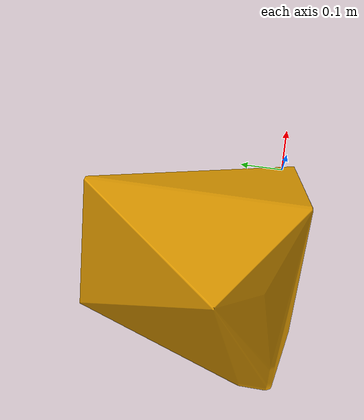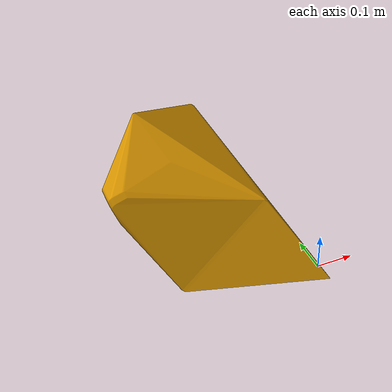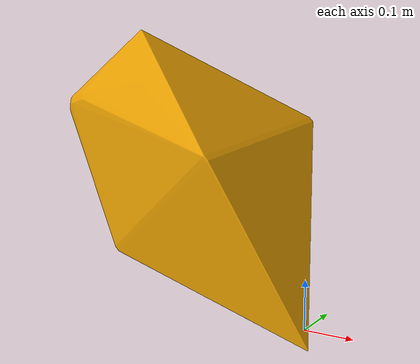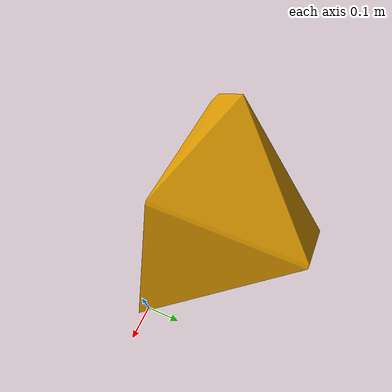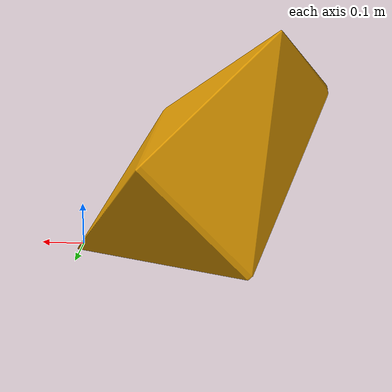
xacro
<robot xmlns:xacro="http://www.ros.org/wiki/xacro" name="depth_perception_scene">
  <xacro:property name="joint_limits_file" value="${load_yaml('../config/joint_limits.yaml')}"/>
  <xacro:property name="joint_limits" value="${joint_limits_file['joint_limits']}"/>
  <xacro:property name="inertials_file" value="${load_yaml('../config/inertials.yaml')}"/>
  <xacro:property name="inertials" value="${inertials_file['inertials']}"/>
  <xacro:property name="joint_transforms_file" value="${load_yaml('../config/joint_transforms.yaml')}"/>
  <xacro:property name="joint_transforms" value="${joint_transforms_file['joint_transforms']}"/>
  <xacro:arg name="visual_mesh_ext" default="stl"/>
  <xacro:include filename="depth_perception_scene.xacro"/>
  <xacro:depth_perception_scene prefix="" visual_mesh_ext="$(arg visual_mesh_ext)"/>
</robot>

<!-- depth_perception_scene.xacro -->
<robot xmlns:xacro="http://www.ros.org/wiki/xacro" name="depth_perception_scene">
  <xacro:macro name="depth_perception_scene" params="prefix:='' visual_mesh_ext:='stl'">
    <link name="${prefix}meca500_assembled_in_zero_robot_position1_1_link_41_1">
      <inertial>
        <mass value="${inertials['meca500_assembled_in_zero_robot_position1_1_link_41_1']['mass']}"/>
        <origin xyz="${inertials['meca500_assembled_in_zero_robot_position1_1_link_41_1']['origin']['xyz']}" rpy="${inertials['meca500_assembled_in_zero_robot_position1_1_link_41_1']['origin']['rpy']}"/>
        <inertia ixx="${inertials['meca500_assembled_in_zero_robot_position1_1_link_41_1']['inertia']['ixx']}" iyy="${inertials['meca500_assembled_in_zero_robot_position1_1_link_41_1']['inertia']['iyy']}" izz="${inertials['meca500_assembled_in_zero_robot_position1_1_link_41_1']['inertia']['izz']}" ixy="${inertials['meca500_assembled_in_zero_robot_position1_1_link_41_1']['inertia']['ixy']}" ixz="${inertials['meca500_assembled_in_zero_robot_position1_1_link_41_1']['inertia']['ixz']}" iyz="${inertials['meca500_assembled_in_zero_robot_position1_1_link_41_1']['inertia']['iyz']}"/>
      </inertial>
      <visual>
        <origin xyz="0 0 0" rpy="0 0 0"/>
        <geometry>
          <mesh filename="../meshes/visual/meca500_assembled_in_zero_robot_position1_1_link_41_1.${visual_mesh_ext}" scale="0.001 0.001 0.001"/>
        </geometry>
      </visual>
      <collision>
        <origin xyz="0 0 0" rpy="0 0 0"/>
        <geometry>
          <mesh filename="../meshes/collision/meca500_assembled_in_zero_robot_position1_1_link_41_1_0.stl" scale="0.001 0.001 0.001"/>
        </geometry>
      </collision>
    </link>
  </xacro:macro>
</robot>
